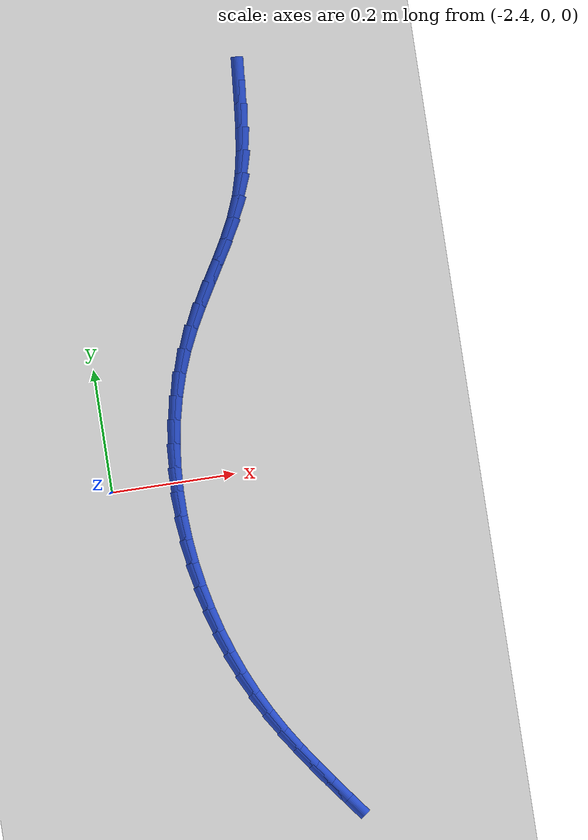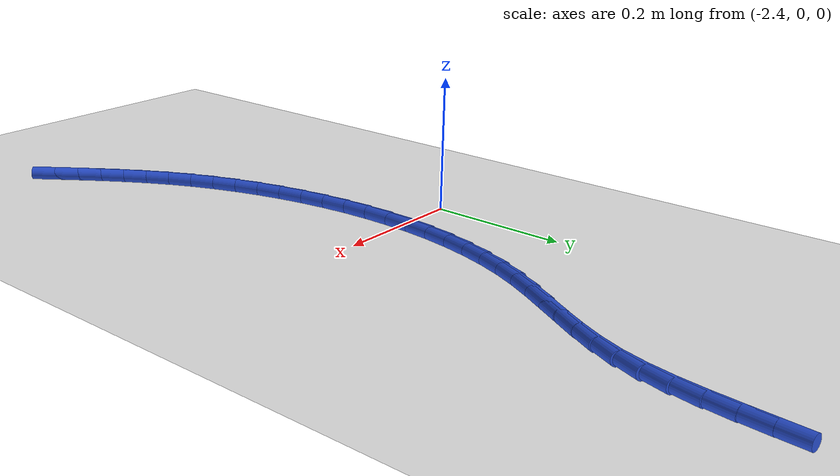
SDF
<sdf version="1.6">
 <world name="default">
  <model name="ground_plane">
   <static>1</static>
   <link name="link">
    <collision name="collision">
     <geometry><plane><normal>0 0 1</normal><size>100 100</size></plane></geometry>
     <surface><friction><ode><mu>100</mu><mu2>50</mu2></ode></friction></surface>
    </collision>
    <visual name="visual">
     <cast_shadows>0</cast_shadows>
     <geometry><plane><normal>0 0 1</normal><size>100 100</size></plane></geometry>
     <material>
      <script><uri>file://media/materials/scripts/gazebo.material</uri><name>Gazebo/WhiteGlow</name></script>
     </material>
    </visual>
   </link>
  </model>
  <model name="line">
   <link name="link_83">
    <pose>-2.097191249855576 0.6243831349213317 0.01 0 1.57 1.4872757043583993</pose>
    <collision name="collision">
     <geometry><cylinder><radius>0.01</radius><length>0.08</length></cylinder></geometry>
    </collision>
    <visual name="visual">
     <material>
      <script><name>Gazebo/Blue</name><uri>file://media/materials/scripts/gazebo.material</uri></script>
     </material>
     <geometry><cylinder><radius>0.01</radius><length>0.08</length></cylinder></geometry>
    </visual>
   </link>
   <link name="link_84">
    <pose>-2.100353438440196 0.586610040677782 0.01 0 1.57 1.4726577964380871</pose>
    <collision name="collision">
     <geometry><cylinder><radius>0.01</radius><length>0.08</length></cylinder></geometry>
    </collision>
    <visual name="visual">
     <material>
      <script><name>Gazebo/Blue</name><uri>file://media/materials/scripts/gazebo.material</uri></script>
     </material>
     <geometry><cylinder><radius>0.01</radius><length>0.08</length></cylinder></geometry>
    </visual>
   </link>
   <link name="link_85">
    <pose>-2.104043619334685 0.549129080383812 0.01 0 1.57 1.4353340963583832</pose>
    <collision name="collision">
     <geometry><cylinder><radius>0.01</radius><length>0.08</length></cylinder></geometry>
    </collision>
    <visual name="visual">
     <material>
      <script><name>Gazebo/Blue</name><uri>file://media/materials/scripts/gazebo.material</uri></script>
     </material>
     <geometry><cylinder><radius>0.01</radius><length>0.08</length></cylinder></geometry>
    </visual>
   </link>
   <link name="link_86">
    <pose>-2.1090782398298913 0.5121904620073999 0.01 0 1.57 1.3742975648681577</pose>
    <collision name="collision">
     <geometry><cylinder><radius>0.01</radius><length>0.08</length></cylinder></geometry>
    </collision>
    <visual name="visual">
     <material>
      <script><name>Gazebo/Blue</name><uri>file://media/materials/scripts/gazebo.material</uri></script>
     </material>
     <geometry><cylinder><radius>0.01</radius><length>0.08</length></cylinder></geometry>
    </visual>
   </link>
   <link name="link_87">
    <pose>-2.116273747216662 0.4760443935165241 0.01 0 1.57 1.288725971122233</pose>
    <collision name="collision">
     <geometry><cylinder><radius>0.01</radius><length>0.08</length></cylinder></geometry>
    </collision>
    <visual name="visual">
     <material>
      <script><name>Gazebo/Blue</name><uri>file://media/materials/scripts/gazebo.material</uri></script>
     </material>
     <geometry><cylinder><radius>0.01</radius><length>0.08</length></cylinder></geometry>
    </visual>
   </link>
   <link name="link_88">
    <pose>-2.1264465887858477 0.4409410828791624 0.01 0 1.57 1.186667396731794</pose>
    <collision name="collision">
     <geometry><cylinder><radius>0.01</radius><length>0.08</length></cylinder></geometry>
    </collision>
    <visual name="visual">
     <material>
      <script><name>Gazebo/Blue</name><uri>file://media/materials/scripts/gazebo.material</uri></script>
     </material>
     <geometry><cylinder><radius>0.01</radius><length>0.08</length></cylinder></geometry>
    </visual>
   </link>
   <link name="link_89">
    <pose>-2.1401509205455436 0.407036948512647 0.01 0 1.57 1.104635295328621</pose>
    <collision name="collision">
     <geometry><cylinder><radius>0.01</radius><length>0.08</length></cylinder></geometry>
    </collision>
    <visual name="visual">
     <material>
      <script><name>Gazebo/Blue</name><uri>file://media/materials/scripts/gazebo.material</uri></script>
     </material>
     <geometry><cylinder><radius>0.01</radius><length>0.08</length></cylinder></geometry>
    </visual>
   </link>
   <link name="link_90">
    <pose>-2.1567430830523104 0.37406009657101913 0.01 0 1.57 1.05268797260115</pose>
    <collision name="collision">
     <geometry><cylinder><radius>0.01</radius><length>0.08</length></cylinder></geometry>
    </collision>
    <visual name="visual">
     <material>
      <script><name>Gazebo/Blue</name><uri>file://media/materials/scripts/gazebo.material</uri></script>
     </material>
     <geometry><cylinder><radius>0.01</radius><length>0.08</length></cylinder></geometry>
    </visual>
   </link>
   <link name="link_91">
    <pose>-2.1752376814066845 0.3416164361817027 0.01 0 1.57 1.0297199177421348</pose>
    <collision name="collision">
     <geometry><cylinder><radius>0.01</radius><length>0.08</length></cylinder></geometry>
    </collision>
    <visual name="visual">
     <material>
      <script><name>Gazebo/Blue</name><uri>file://media/materials/scripts/gazebo.material</uri></script>
     </material>
     <geometry><cylinder><radius>0.01</radius><length>0.08</length></cylinder></geometry>
    </visual>
   </link>
   <link name="link_92">
    <pose>-2.1946492949202034 0.30931186725054505 0.01 0 1.57 1.034736277364763</pose>
    <collision name="collision">
     <geometry><cylinder><radius>0.01</radius><length>0.08</length></cylinder></geometry>
    </collision>
    <visual name="visual">
     <material>
      <script><name>Gazebo/Blue</name><uri>file://media/materials/scripts/gazebo.material</uri></script>
     </material>
     <geometry><cylinder><radius>0.01</radius><length>0.08</length></cylinder></geometry>
    </visual>
   </link>
   <link name="link_93">
    <pose>-2.213992502904401 0.2767522896833937 0.01 0 1.57 1.0673844649549018</pose>
    <collision name="collision">
     <geometry><cylinder><radius>0.01</radius><length>0.08</length></cylinder></geometry>
    </collision>
    <visual name="visual">
     <material>
      <script><name>Gazebo/Blue</name><uri>file://media/materials/scripts/gazebo.material</uri></script>
     </material>
     <geometry><cylinder><radius>0.01</radius><length>0.08</length></cylinder></geometry>
    </visual>
   </link>
   <link name="link_94">
    <pose>-2.2322818846708135 0.24354360338609626 0.01 0 1.57 1.1271784761061054</pose>
    <collision name="collision">
     <geometry><cylinder><radius>0.01</radius><length>0.08</length></cylinder></geometry>
    </collision>
    <visual name="visual">
     <material>
      <script><name>Gazebo/Blue</name><uri>file://media/materials/scripts/gazebo.material</uri></script>
     </material>
     <geometry><cylinder><radius>0.01</radius><length>0.08</length></cylinder></geometry>
    </visual>
   </link>
   <link name="link_95">
    <pose>-2.24855328727054 0.20930299671944091 0.01 0 1.57 1.199367382515246</pose>
    <collision name="collision">
     <geometry><cylinder><radius>0.01</radius><length>0.08</length></cylinder></geometry>
    </collision>
    <visual name="visual">
     <material>
      <script><name>Gazebo/Blue</name><uri>file://media/materials/scripts/gazebo.material</uri></script>
     </material>
     <geometry><cylinder><radius>0.01</radius><length>0.08</length></cylinder></geometry>
    </visual>
   </link>
   <link name="link_96">
    <pose>-2.262338743747442 0.17391102280868906 0.01 0 1.57 1.2689756290263892</pose>
    <collision name="collision">
     <geometry><cylinder><radius>0.01</radius><length>0.08</length></cylinder></geometry>
    </collision>
    <visual name="visual">
     <material>
      <script><name>Gazebo/Blue</name><uri>file://media/materials/scripts/gazebo.material</uri></script>
     </material>
     <geometry><cylinder><radius>0.01</radius><length>0.08</length></cylinder></geometry>
    </visual>
   </link>
   <link name="link_97">
    <pose>-2.273670409267057 0.13751368875544248 0.01 0 1.57 1.3354217168607116</pose>
    <collision name="collision">
     <geometry><cylinder><radius>0.01</radius><length>0.08</length></cylinder></geometry>
    </collision>
    <visual name="visual">
     <material>
      <script><name>Gazebo/Blue</name><uri>file://media/materials/scripts/gazebo.material</uri></script>
     </material>
     <geometry><cylinder><radius>0.01</radius><length>0.08</length></cylinder></geometry>
    </visual>
   </link>
   <link name="link_98">
    <pose>-2.282602493975679 0.10026870796679681 0.01 0 1.57 1.3988783425372586</pose>
    <collision name="collision">
     <geometry><cylinder><radius>0.01</radius><length>0.08</length></cylinder></geometry>
    </collision>
    <visual name="visual">
     <material>
      <script><name>Gazebo/Blue</name><uri>file://media/materials/scripts/gazebo.material</uri></script>
     </material>
     <geometry><cylinder><radius>0.01</radius><length>0.08</length></cylinder></geometry>
    </visual>
   </link>
   <link name="link_99">
    <pose>-2.289189208019603 0.06233379384984722 0.01 0 1.57 1.4595888979057952</pose>
    <collision name="collision">
     <geometry><cylinder><radius>0.01</radius><length>0.08</length></cylinder></geometry>
    </collision>
    <visual name="visual">
     <material>
      <script><name>Gazebo/Blue</name><uri>file://media/materials/scripts/gazebo.material</uri></script>
     </material>
     <geometry><cylinder><radius>0.01</radius><length>0.08</length></cylinder></geometry>
    </visual>
   </link>
   <link name="link_100">
    <pose>-2.2934847615451224 0.023866659811688857 0.01 0 1.57 1.5178459664427373</pose>
    <collision name="collision">
     <geometry><cylinder><radius>0.01</radius><length>0.08</length></cylinder></geometry>
    </collision>
    <visual name="visual">
     <material>
      <script><name>Gazebo/Blue</name><uri>file://media/materials/scripts/gazebo.material</uri></script>
     </material>
     <geometry><cylinder><radius>0.01</radius><length>0.08</length></cylinder></geometry>
    </visual>
   </link>
   <link name="link_101">
    <pose>-2.2955433646985326 -0.014974980740583052 0.01 0 1.57 -1.5676180975931548</pose>
    <collision name="collision">
     <geometry><cylinder><radius>0.01</radius><length>0.08</length></cylinder></geometry>
    </collision>
    <visual name="visual">
     <material>
      <script><name>Gazebo/Blue</name><uri>file://media/materials/scripts/gazebo.material</uri></script>
     </material>
     <geometry><cylinder><radius>0.01</radius><length>0.08</length></cylinder></geometry>
    </visual>
   </link>
   <link name="link_102">
    <pose>-2.2954192276261267 -0.05403341439987332 0.01 0 1.57 -1.5132726822351499</pose>
    <collision name="collision">
     <geometry><cylinder><radius>0.01</radius><length>0.08</length></cylinder></geometry>
    </collision>
    <visual name="visual">
     <material>
      <script><name>Gazebo/Blue</name><uri>file://media/materials/scripts/gazebo.material</uri></script>
     </material>
     <geometry><cylinder><radius>0.01</radius><length>0.08</length></cylinder></geometry>
    </visual>
   </link>
   <link name="link_103">
    <pose>-2.2931665604742 -0.09315092775908679 0.01 0 1.57 -1.4603528793097549</pose>
    <collision name="collision">
     <geometry><cylinder><radius>0.01</radius><length>0.08</length></cylinder></geometry>
    </collision>
    <visual name="visual">
     <material>
      <script><name>Gazebo/Blue</name><uri>file://media/materials/scripts/gazebo.material</uri></script>
     </material>
     <geometry><cylinder><radius>0.01</radius><length>0.08</length></cylinder></geometry>
    </visual>
   </link>
   <link name="link_104">
    <pose>-2.2888395733890463 -0.13216980741112816 0.01 0 1.57 -1.4084935515503958</pose>
    <collision name="collision">
     <geometry><cylinder><radius>0.01</radius><length>0.08</length></cylinder></geometry>
    </collision>
    <visual name="visual">
     <material>
      <script><name>Gazebo/Blue</name><uri>file://media/materials/scripts/gazebo.material</uri></script>
     </material>
     <geometry><cylinder><radius>0.01</radius><length>0.08</length></cylinder></geometry>
    </visual>
   </link>
   <link name="link_105">
    <pose>-2.2824924765169596 -0.17093233994890242 0.01 0 1.57 -1.3573240495645147</pose>
    <collision name="collision">
     <geometry><cylinder><radius>0.01</radius><length>0.08</length></cylinder></geometry>
    </collision>
    <visual name="visual">
     <material>
      <script><name>Gazebo/Blue</name><uri>file://media/materials/scripts/gazebo.material</uri></script>
     </material>
     <geometry><cylinder><radius>0.01</radius><length>0.08</length></cylinder></geometry>
    </visual>
   </link>
   <link name="link_106">
    <pose>-2.2741794800042348 -0.20928081196531428 0.01 0 1.57 -1.306468331879139</pose>
    <collision name="collision">
     <geometry><cylinder><radius>0.01</radius><length>0.08</length></cylinder></geometry>
    </collision>
    <visual name="visual">
     <material>
      <script><name>Gazebo/Blue</name><uri>file://media/materials/scripts/gazebo.material</uri></script>
     </material>
     <geometry><cylinder><radius>0.01</radius><length>0.08</length></cylinder></geometry>
    </visual>
   </link>
   <link name="link_107">
    <pose>-2.263954793997166 -0.24705751005326854 0.01 0 1.57 -1.2555437332862633</pose>
    <collision name="collision">
     <geometry><cylinder><radius>0.01</radius><length>0.08</length></cylinder></geometry>
    </collision>
    <visual name="visual">
     <material>
      <script><name>Gazebo/Blue</name><uri>file://media/materials/scripts/gazebo.material</uri></script>
     </material>
     <geometry><cylinder><radius>0.01</radius><length>0.08</length></cylinder></geometry>
    </visual>
   </link>
   <link name="link_108">
    <pose>-2.2518726286420474 -0.28410472080567 0.01 0 1.57 -1.2041589097778775</pose>
    <collision name="collision">
     <geometry><cylinder><radius>0.01</radius><length>0.08</length></cylinder></geometry>
    </collision>
    <visual name="visual">
     <material>
      <script><name>Gazebo/Blue</name><uri>file://media/materials/scripts/gazebo.material</uri></script>
     </material>
     <geometry><cylinder><radius>0.01</radius><length>0.08</length></cylinder></geometry>
    </visual>
   </link>
   <link name="link_109">
    <pose>-2.2379871940851737 -0.3202647308154236 0.01 0 1.57 -1.1519114681192388</pose>
    <collision name="collision">
     <geometry><cylinder><radius>0.01</radius><length>0.08</length></cylinder></geometry>
    </collision>
    <visual name="visual">
     <material>
      <script><name>Gazebo/Blue</name><uri>file://media/materials/scripts/gazebo.material</uri></script>
     </material>
     <geometry><cylinder><radius>0.01</radius><length>0.08</length></cylinder></geometry>
    </visual>
   </link>
   <link name="link_110">
    <pose>-2.2223527004728383 -0.35537982667543394 0.01 0 1.57 -1.098385827107327</pose>
    <collision name="collision">
     <geometry><cylinder><radius>0.01</radius><length>0.08</length></cylinder></geometry>
    </collision>
    <visual name="visual">
     <material>
      <script><name>Gazebo/Blue</name><uri>file://media/materials/scripts/gazebo.material</uri></script>
     </material>
     <geometry><cylinder><radius>0.01</radius><length>0.08</length></cylinder></geometry>
    </visual>
   </link>
   <link name="link_111">
    <pose>-2.2050233579513363 -0.389292294978606 0.01 0 1.57 -1.0448453796753825</pose>
    <collision name="collision">
     <geometry><cylinder><radius>0.01</radius><length>0.08</length></cylinder></geometry>
    </collision>
    <visual name="visual">
     <material>
      <script><name>Gazebo/Blue</name><uri>file://media/materials/scripts/gazebo.material</uri></script>
     </material>
     <geometry><cylinder><radius>0.01</radius><length>0.08</length></cylinder></geometry>
    </visual>
   </link>
   <link name="link_112">
    <pose>-2.1860903290663023 -0.42190785048870666 0.01 0 1.57 -0.9987874792370115</pose>
    <collision name="collision">
     <geometry><cylinder><radius>0.01</radius><length>0.08</length></cylinder></geometry>
    </collision>
    <visual name="visual">
     <material>
      <script><name>Gazebo/Blue</name><uri>file://media/materials/scripts/gazebo.material</uri></script>
     </material>
     <geometry><cylinder><radius>0.01</radius><length>0.08</length></cylinder></geometry>
    </visual>
   </link>
   <link name="link_113">
    <pose>-2.1658077686945445 -0.45341198155972556 0.01 0 1.57 -0.9628277485286281</pose>
    <collision name="collision">
     <geometry><cylinder><radius>0.01</radius><length>0.08</length></cylinder></geometry>
    </collision>
    <visual name="visual">
     <material>
      <script><name>Gazebo/Blue</name><uri>file://media/materials/scripts/gazebo.material</uri></script>
     </material>
     <geometry><cylinder><radius>0.01</radius><length>0.08</length></cylinder></geometry>
    </visual>
   </link>
   <link name="link_114">
    <pose>-2.1444747574282386 -0.4840672907791353 0.01 0 1.57 -0.9373188002002137</pose>
    <collision name="collision">
     <geometry><cylinder><radius>0.01</radius><length>0.08</length></cylinder></geometry>
    </collision>
    <visual name="visual">
     <material>
      <script><name>Gazebo/Blue</name><uri>file://media/materials/scripts/gazebo.material</uri></script>
     </material>
     <geometry><cylinder><radius>0.01</radius><length>0.08</length></cylinder></geometry>
    </visual>
   </link>
   <link name="link_115">
    <pose>-2.1223903772699813 -0.5141363831553725 0.01 0 1.57 -0.9224170896784842</pose>
    <collision name="collision">
     <geometry><cylinder><radius>0.01</radius><length>0.08</length></cylinder></geometry>
    </collision>
    <visual name="visual">
     <material>
      <script><name>Gazebo/Blue</name><uri>file://media/materials/scripts/gazebo.material</uri></script>
     </material>
     <geometry><cylinder><radius>0.01</radius><length>0.08</length></cylinder></geometry>
    </visual>
   </link>
   <link name="link_116">
    <pose>-2.0998537102223733 -0.5438818636968732 0.01 0 1.57 -0.9181627203014662</pose>
    <collision name="collision">
     <geometry><cylinder><radius>0.01</radius><length>0.08</length></cylinder></geometry>
    </collision>
    <visual name="visual">
     <material>
      <script><name>Gazebo/Blue</name><uri>file://media/materials/scripts/gazebo.material</uri></script>
     </material>
     <geometry><cylinder><radius>0.01</radius><length>0.08</length></cylinder></geometry>
    </visual>
   </link>
  </model>
 </world>
</sdf>
